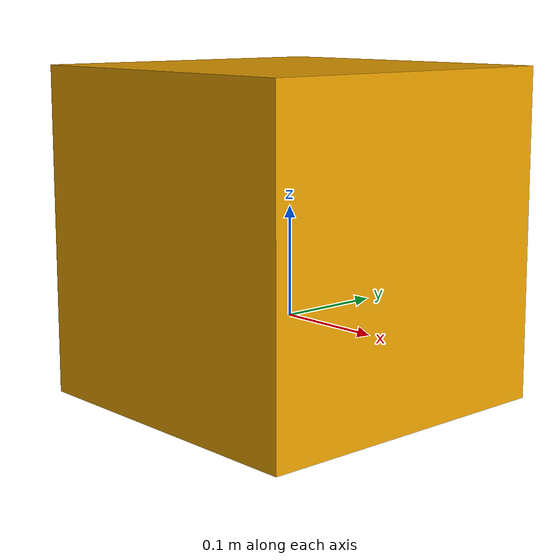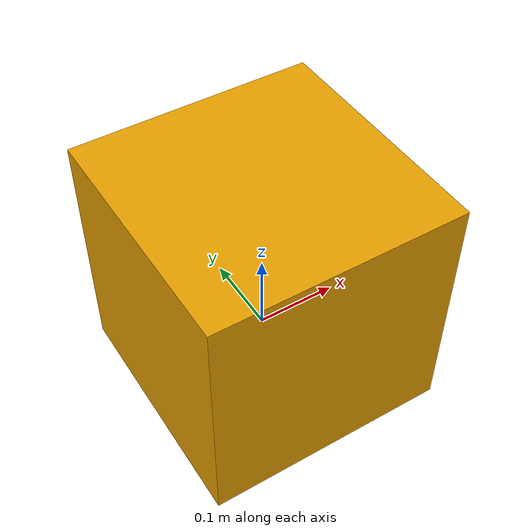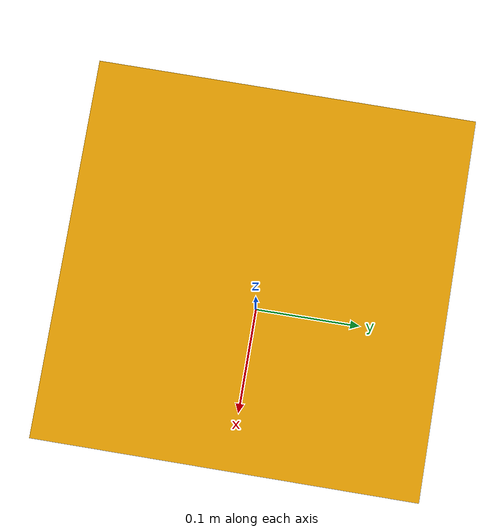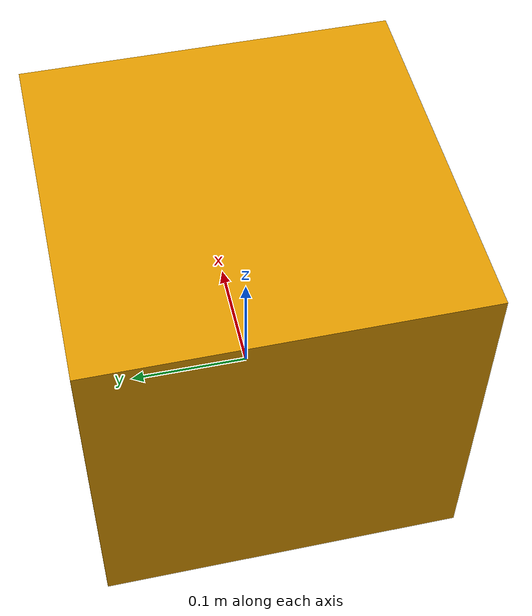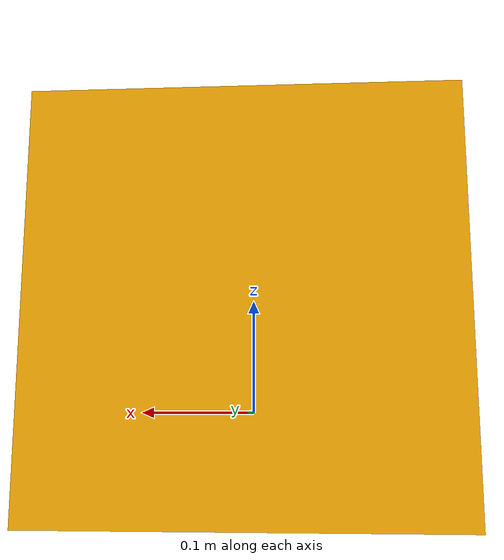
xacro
<?xml version="1.0"?>
<robot xmlns:xacro="http://ros.org/wiki/xacro" name="target">
	<xacro:arg name="enableGzPlugin" default="true"/>
  <xacro:arg name="scale" default="0.15"/>
  <xacro:property name="radius" value="${0.25*$(arg scale)}"/>

 <material name="pink">
    <color rgba="0 0 0.8 1"/>
  </material>

  <link
    name="target/base_link">
    <inertial>
      <origin
        xyz="0 0 0"
        rpy="0 0 0" />
      <mass
        value="1" />
      <inertia
        ixx="1"
        ixy="0"
        ixz="0"
        iyy="1"
        iyz="0"
        izz="1" />
    </inertial>
    <visual name="visual">
		  <origin
		    xyz="0 0 ${2*radius}"
        rpy="0 0 -1.5707963267" />
      <geometry>
        <mesh
            filename="package://foot_control_xy/models/target/meshes/target.dae" scale="$(arg scale) $(arg scale) $(arg scale)"/>
       </geometry>
      </visual>
  </link>
    <xacro:if value="$(arg enableGzPlugin)">
	   <gazebo>
	   <plugin name="gzTfUpdate" filename="libgzTfUpdate.so">
			<actorName>target</actorName>
	   </plugin>
	  </gazebo>
  </xacro:if>
</robot>
